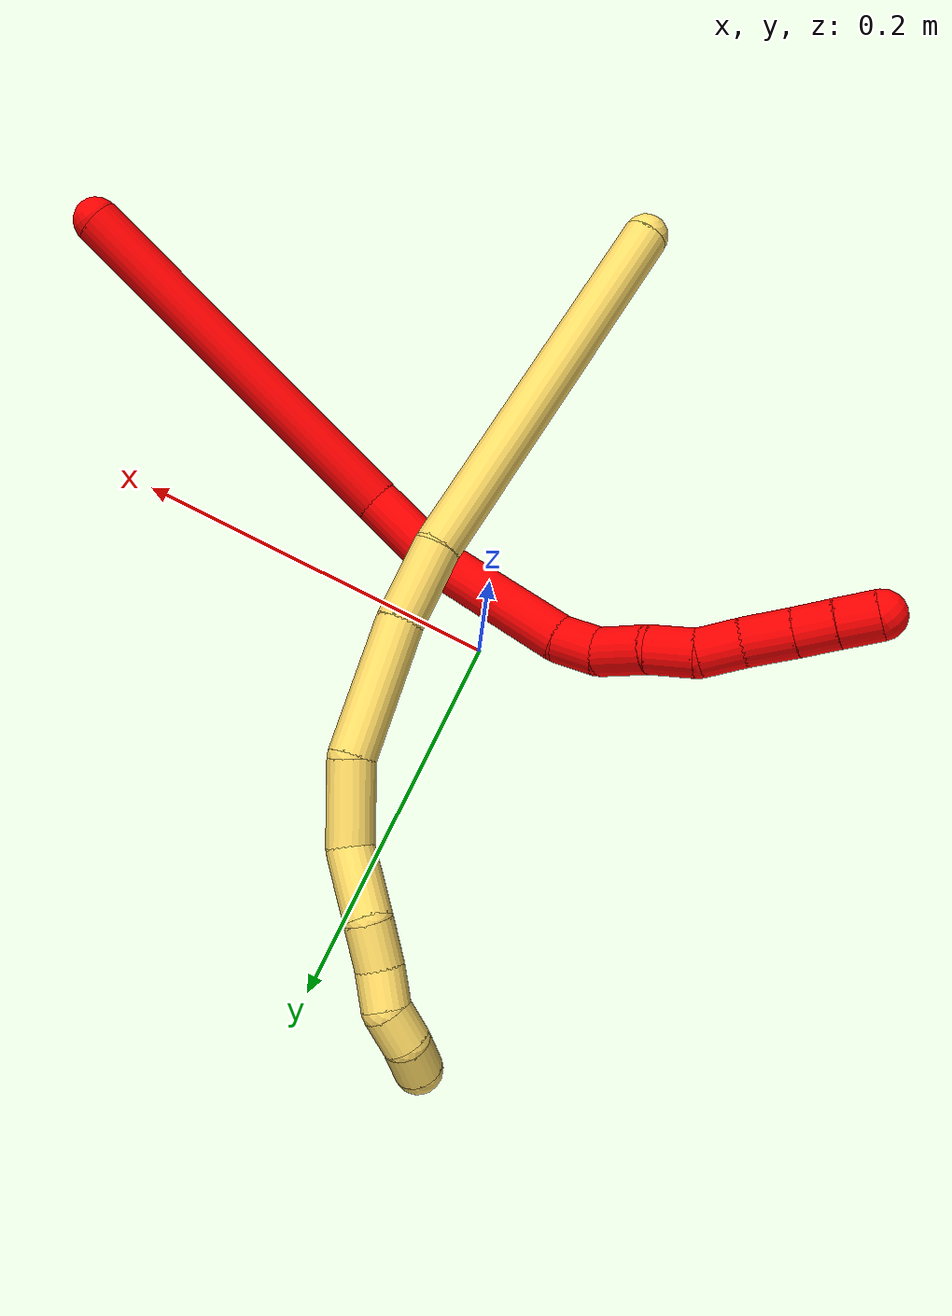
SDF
<sdf version="1.7">
 <world name="default">
  <model name="photoneo_s_sensor">
   <static>1</static>
   <pose>0 0 2 1.57079 1.57079 3.14159</pose>
   <link name="link">
    <inertial><mass>0.1</mass></inertial>
    <sensor name="sensor" type="depth">
     <update_rate>30</update_rate>
     <camera>
      <horizontal_fov>1.22</horizontal_fov>
      <image><width>1920</width><height>1200</height><format>B8G8R8</format></image>
      <clip><near>0.1</near><far>4</far></clip>
      <depth_camera><output>points</output></depth_camera>
     </camera>
     <plugin name="camera_plugin" filename="libgazebo_ros_depth_camera.so">
      <baseline>0.2</baseline>
      <alwaysOn>1</alwaysOn>
      <updateRate>0.0</updateRate>
      <cameraName>camera_ir</cameraName>
      <imageTopicName>/camera/color/image_raw</imageTopicName>
      <cameraInfoTopicName>/camera/color/camera_info</cameraInfoTopicName>
      <depthImageTopicName>/camera/depth/image_raw</depthImageTopicName>
      <depthImageCameraInfoTopicName>/camera/depth/camera_info</depthImageCameraInfoTopicName>
      <pointCloudTopicName>/camera/depth/points</pointCloudTopicName>
      <frameName>fr_optical</frameName>
      <pointCloudCutoff>0.1</pointCloudCutoff>
      <pointCloudCutoffMax>2.0</pointCloudCutoffMax>
      <distortionK1>0</distortionK1>
      <distortionK2>0</distortionK2>
      <distortionK3>0</distortionK3>
      <distortionT1>0</distortionT1>
      <distortionT2>0</distortionT2>
      <CxPrime>0</CxPrime>
      <Cx>0</Cx>
      <Cy>0</Cy>
      <focalLength>0</focalLength>
      <hackBaseline>0</hackBaseline>
     </plugin>
    </sensor>
   </link>
  </model>
  <model name="bin">
   <static>1</static>
   <link name="bottom">
    <collision name="collision-bottom">
     <pose>0 0 -0.01 0 -0 0</pose>
     <geometry><box><size>0.8 0.6 0.02</size></box></geometry>
     <surface>
      <friction><ode><mu>100</mu><mu2>100</mu2></ode></friction>
      <contact><collide_bitmask>65535</collide_bitmask></contact>
     </surface>
    </collision>
   </link>
   <link name="west_wall">
    <collision name="collision-west_wall">
     <pose>-0.41 0 0.1 0 -0 0</pose>
     <geometry><box><size>0.02 0.6 0.2</size></box></geometry>
     <surface>
      <friction><ode><mu>100</mu><mu2>100</mu2></ode></friction>
      <contact><collide_bitmask>65535</collide_bitmask></contact>
     </surface>
    </collision>
   </link>
   <link name="east_wall">
    <collision name="collision-east_wall">
     <pose>0.41 0 0.1 0 -0 0</pose>
     <geometry><box><size>0.02 0.6 0.2</size></box></geometry>
     <surface>
      <friction><ode><mu>100</mu><mu2>100</mu2></ode></friction>
      <contact><collide_bitmask>65535</collide_bitmask></contact>
     </surface>
    </collision>
   </link>
   <link name="south_wall">
    <collision name="collision-south_wall">
     <pose>0 -0.31 0.1 0 -0 0</pose>
     <geometry><box><size>0.8 0.02 0.2</size></box></geometry>
     <surface>
      <friction><ode><mu>100</mu><mu2>100</mu2></ode></friction>
      <contact><collide_bitmask>65535</collide_bitmask></contact>
     </surface>
    </collision>
   </link>
   <link name="north_wall">
    <collision name="collision-north_wall">
     <pose>0 0.31 0.1 0 -0 0</pose>
     <geometry><box><size>0.8 0.02 0.2</size></box></geometry>
     <surface>
      <friction><ode><mu>100</mu><mu2>100</mu2></ode></friction>
      <contact><collide_bitmask>65535</collide_bitmask></contact>
     </surface>
    </collision>
   </link>
  </model>
  <model name="2">
   <static>0</static>
   <link name="2">
    <collision name="collision-cylinder-e_1_1_4">
     <pose>-0.019762 0.007416 -0.10188 -3.06893 -0.191101 2.41665</pose>
     <geometry><cylinder><radius>0.0125</radius><length>0.208087</length></cylinder></geometry>
     <surface>
      <friction><ode><mu>1.16</mu><mu2>1.16</mu2><slip1>0</slip1><slip2>0</slip2></ode></friction>
      <contact><ode><kp>1e+06</kp><kd>1</kd><max_vel>0</max_vel><min_depth>0.001</min_depth></ode></contact>
     </surface>
    </collision>
    <visual name="visual-cylinder-e_1_1_4">
     <pose>-0.019762 0.007416 -0.10188 -3.06893 -0.191101 2.41665</pose>
     <geometry><cylinder><radius>0.0125</radius><length>0.208087</length></cylinder></geometry>
     <material><ambient>1 0 0 1</ambient></material>
    </visual>
    <collision name="collision-cylinder-e_2_4_5">
     <pose>-0.046739 0.02101 -0.224836 -2.85642 -0.31741 1.67933</pose>
     <geometry><cylinder><radius>0.0125</radius><length>0.046238</length></cylinder></geometry>
     <surface>
      <friction><ode><mu>1.16</mu><mu2>1.16</mu2><slip1>0</slip1><slip2>0</slip2></ode></friction>
      <contact><ode><kp>1e+06</kp><kd>1</kd><max_vel>0</max_vel><min_depth>0.001</min_depth></ode></contact>
     </surface>
    </collision>
    <visual name="visual-cylinder-e_2_4_5">
     <pose>-0.046739 0.02101 -0.224836 -2.85642 -0.31741 1.67933</pose>
     <geometry><cylinder><radius>0.0125</radius><length>0.046238</length></cylinder></geometry>
     <material><ambient>1 0 0 1</ambient></material>
    </visual>
    <collision name="collision-cylinder-e_3_5_6">
     <pose>-0.07687 0.040374 -0.276917 -2.73949 -0.597277 1.97202</pose>
     <geometry><cylinder><radius>0.0125</radius><length>0.08149</length></cylinder></geometry>
     <surface>
      <friction><ode><mu>1.16</mu><mu2>1.16</mu2><slip1>0</slip1><slip2>0</slip2></ode></friction>
      <contact><ode><kp>1e+06</kp><kd>1</kd><max_vel>0</max_vel><min_depth>0.001</min_depth></ode></contact>
     </surface>
    </collision>
    <visual name="visual-cylinder-e_3_5_6">
     <pose>-0.07687 0.040374 -0.276917 -2.73949 -0.597277 1.97202</pose>
     <geometry><cylinder><radius>0.0125</radius><length>0.08149</length></cylinder></geometry>
     <material><ambient>1 0 0 1</ambient></material>
    </visual>
    <collision name="collision-cylinder-e_4_6_7">
     <pose>-0.108039 0.055957 -0.315151 -2.82132 -0.82549 2.43486</pose>
     <geometry><cylinder><radius>0.0125</radius><length>0.022463</length></cylinder></geometry>
     <surface>
      <friction><ode><mu>1.16</mu><mu2>1.16</mu2><slip1>0</slip1><slip2>0</slip2></ode></friction>
      <contact><ode><kp>1e+06</kp><kd>1</kd><max_vel>0</max_vel><min_depth>0.001</min_depth></ode></contact>
     </surface>
    </collision>
    <visual name="visual-cylinder-e_4_6_7">
     <pose>-0.108039 0.055957 -0.315151 -2.82132 -0.82549 2.43486</pose>
     <geometry><cylinder><radius>0.0125</radius><length>0.022463</length></cylinder></geometry>
     <material><ambient>1 0 0 1</ambient></material>
    </visual>
    <collision name="collision-cylinder-e_5_7_8">
     <pose>-0.129131 0.060956 -0.326769 -2.60659 -1.19264 2.37406</pose>
     <geometry><cylinder><radius>0.0125</radius><length>0.027629</length></cylinder></geometry>
     <surface>
      <friction><ode><mu>1.16</mu><mu2>1.16</mu2><slip1>0</slip1><slip2>0</slip2></ode></friction>
      <contact><ode><kp>1e+06</kp><kd>1</kd><max_vel>0</max_vel><min_depth>0.001</min_depth></ode></contact>
     </surface>
    </collision>
    <visual name="visual-cylinder-e_5_7_8">
     <pose>-0.129131 0.060956 -0.326769 -2.60659 -1.19264 2.37406</pose>
     <geometry><cylinder><radius>0.0125</radius><length>0.027629</length></cylinder></geometry>
     <material><ambient>1 0 0 1</ambient></material>
    </visual>
    <collision name="collision-cylinder-e_6_8_9">
     <pose>-0.152611 0.064238 -0.337738 -3.03842 -1.01448 2.95631</pose>
     <geometry><cylinder><radius>0.0125</radius><length>0.025061</length></cylinder></geometry>
     <surface>
      <friction><ode><mu>1.16</mu><mu2>1.16</mu2><slip1>0</slip1><slip2>0</slip2></ode></friction>
      <contact><ode><kp>1e+06</kp><kd>1</kd><max_vel>0</max_vel><min_depth>0.001</min_depth></ode></contact>
     </surface>
    </collision>
    <visual name="visual-cylinder-e_6_8_9">
     <pose>-0.152611 0.064238 -0.337738 -3.03842 -1.01448 2.95631</pose>
     <geometry><cylinder><radius>0.0125</radius><length>0.025061</length></cylinder></geometry>
     <material><ambient>1 0 0 1</ambient></material>
    </visual>
    <collision name="collision-cylinder-e_7_9_10">
     <pose>-0.173646 0.062414 -0.348091 2.55527 -1.16002 -2.27811</pose>
     <geometry><cylinder><radius>0.0125</radius><length>0.022676</length></cylinder></geometry>
     <surface>
      <friction><ode><mu>1.16</mu><mu2>1.16</mu2><slip1>0</slip1><slip2>0</slip2></ode></friction>
      <contact><ode><kp>1e+06</kp><kd>1</kd><max_vel>0</max_vel><min_depth>0.001</min_depth></ode></contact>
     </surface>
    </collision>
    <visual name="visual-cylinder-e_7_9_10">
     <pose>-0.173646 0.062414 -0.348091 2.55527 -1.16002 -2.27811</pose>
     <geometry><cylinder><radius>0.0125</radius><length>0.022676</length></cylinder></geometry>
     <material><ambient>1 0 0 1</ambient></material>
    </visual>
    <collision name="collision-cylinder-e_8_10_11">
     <pose>-0.196058 0.058615 -0.356077 2.84368 -1.21922 -2.71825</pose>
     <geometry><cylinder><radius>0.0125</radius><length>0.025599</length></cylinder></geometry>
     <surface>
      <friction><ode><mu>1.16</mu><mu2>1.16</mu2><slip1>0</slip1><slip2>0</slip2></ode></friction>
      <contact><ode><kp>1e+06</kp><kd>1</kd><max_vel>0</max_vel><min_depth>0.001</min_depth></ode></contact>
     </surface>
    </collision>
    <visual name="visual-cylinder-e_8_10_11">
     <pose>-0.196058 0.058615 -0.356077 2.84368 -1.21922 -2.71825</pose>
     <geometry><cylinder><radius>0.0125</radius><length>0.025599</length></cylinder></geometry>
     <material><ambient>1 0 0 1</ambient></material>
    </visual>
    <collision name="collision-cylinder-e_9_11_12">
     <pose>-0.217572 0.056258 -0.363409 2.81313 -1.23685 -2.68393</pose>
     <geometry><cylinder><radius>0.0125</radius><length>0.020106</length></cylinder></geometry>
     <surface>
      <friction><ode><mu>1.16</mu><mu2>1.16</mu2><slip1>0</slip1><slip2>0</slip2></ode></friction>
      <contact><ode><kp>1e+06</kp><kd>1</kd><max_vel>0</max_vel><min_depth>0.001</min_depth></ode></contact>
     </surface>
    </collision>
    <visual name="visual-cylinder-e_9_11_12">
     <pose>-0.217572 0.056258 -0.363409 2.81313 -1.23685 -2.68393</pose>
     <geometry><cylinder><radius>0.0125</radius><length>0.020106</length></cylinder></geometry>
     <material><ambient>1 0 0 1</ambient></material>
    </visual>
    <collision name="collision-cylinder-e_10_12_2">
     <pose>-0.236743 0.053934 -0.369911 2.78454 -1.21363 -2.63297</pose>
     <geometry><cylinder><radius>0.0125</radius><length>0.02065</length></cylinder></geometry>
     <surface>
      <friction><ode><mu>1.16</mu><mu2>1.16</mu2><slip1>0</slip1><slip2>0</slip2></ode></friction>
      <contact><ode><kp>1e+06</kp><kd>1</kd><max_vel>0</max_vel><min_depth>0.001</min_depth></ode></contact>
     </surface>
    </collision>
    <visual name="visual-cylinder-e_10_12_2">
     <pose>-0.236743 0.053934 -0.369911 2.78454 -1.21363 -2.63297</pose>
     <geometry><cylinder><radius>0.0125</radius><length>0.02065</length></cylinder></geometry>
     <material><ambient>1 0 0 1</ambient></material>
    </visual>
    <collision name="collision-sphere-2">
     <pose>-0.246417 0.052672 -0.373293 0 -0 0</pose>
     <geometry><sphere><radius>0.0125</radius></sphere></geometry>
     <surface>
      <friction><ode><mu>1.16</mu><mu2>1.16</mu2><slip1>0</slip1><slip2>0</slip2></ode></friction>
      <contact><ode><kp>1e+06</kp><kd>1</kd><max_vel>0</max_vel><min_depth>0.001</min_depth></ode></contact>
     </surface>
    </collision>
    <visual name="visual-sphere-2">
     <pose>-0.246417 0.052672 -0.373293 0 -0 0</pose>
     <geometry><sphere><radius>0.0125</radius></sphere></geometry>
     <material><ambient>1 0 0 1</ambient></material>
    </visual>
    <collision name="collision-sphere-12">
     <pose>-0.22707 0.055195 -0.366528 0 -0 0</pose>
     <geometry><sphere><radius>0.0125</radius></sphere></geometry>
     <surface>
      <friction><ode><mu>1.16</mu><mu2>1.16</mu2><slip1>0</slip1><slip2>0</slip2></ode></friction>
      <contact><ode><kp>1e+06</kp><kd>1</kd><max_vel>0</max_vel><min_depth>0.001</min_depth></ode></contact>
     </surface>
    </collision>
    <visual name="visual-sphere-12">
     <pose>-0.22707 0.055195 -0.366528 0 -0 0</pose>
     <geometry><sphere><radius>0.0125</radius></sphere></geometry>
     <material><ambient>1 0 0 1</ambient></material>
    </visual>
    <collision name="collision-sphere-11">
     <pose>-0.208074 0.057321 -0.36029 0 -0 0</pose>
     <geometry><sphere><radius>0.0125</radius></sphere></geometry>
     <surface>
      <friction><ode><mu>1.16</mu><mu2>1.16</mu2><slip1>0</slip1><slip2>0</slip2></ode></friction>
      <contact><ode><kp>1e+06</kp><kd>1</kd><max_vel>0</max_vel><min_depth>0.001</min_depth></ode></contact>
     </surface>
    </collision>
    <visual name="visual-sphere-11">
     <pose>-0.208074 0.057321 -0.36029 0 -0 0</pose>
     <geometry><sphere><radius>0.0125</radius></sphere></geometry>
     <material><ambient>1 0 0 1</ambient></material>
    </visual>
    <collision name="collision-sphere-10">
     <pose>-0.184041 0.059909 -0.351863 0 -0 0</pose>
     <geometry><sphere><radius>0.0125</radius></sphere></geometry>
     <surface>
      <friction><ode><mu>1.16</mu><mu2>1.16</mu2><slip1>0</slip1><slip2>0</slip2></ode></friction>
      <contact><ode><kp>1e+06</kp><kd>1</kd><max_vel>0</max_vel><min_depth>0.001</min_depth></ode></contact>
     </surface>
    </collision>
    <visual name="visual-sphere-10">
     <pose>-0.184041 0.059909 -0.351863 0 -0 0</pose>
     <geometry><sphere><radius>0.0125</radius></sphere></geometry>
     <material><ambient>1 0 0 1</ambient></material>
    </visual>
    <collision name="collision-sphere-9">
     <pose>-0.163252 0.064919 -0.34432 0 -0 0</pose>
     <geometry><sphere><radius>0.0125</radius></sphere></geometry>
     <surface>
      <friction><ode><mu>1.16</mu><mu2>1.16</mu2><slip1>0</slip1><slip2>0</slip2></ode></friction>
      <contact><ode><kp>1e+06</kp><kd>1</kd><max_vel>0</max_vel><min_depth>0.001</min_depth></ode></contact>
     </surface>
    </collision>
    <visual name="visual-sphere-9">
     <pose>-0.163252 0.064919 -0.34432 0 -0 0</pose>
     <geometry><sphere><radius>0.0125</radius></sphere></geometry>
     <material><ambient>1 0 0 1</ambient></material>
    </visual>
    <collision name="collision-sphere-4">
     <pose>-0.039524 0.014831 -0.203759 0 -0 0</pose>
     <geometry><sphere><radius>0.0125</radius></sphere></geometry>
     <surface>
      <friction><ode><mu>1.16</mu><mu2>1.16</mu2><slip1>0</slip1><slip2>0</slip2></ode></friction>
      <contact><ode><kp>1e+06</kp><kd>1</kd><max_vel>0</max_vel><min_depth>0.001</min_depth></ode></contact>
     </surface>
    </collision>
    <visual name="visual-sphere-4">
     <pose>-0.039524 0.014831 -0.203759 0 -0 0</pose>
     <geometry><sphere><radius>0.0125</radius></sphere></geometry>
     <material><ambient>1 0 0 1</ambient></material>
    </visual>
    <collision name="collision-sphere-1">
     <geometry><sphere><radius>0.0125</radius></sphere></geometry>
     <surface>
      <friction><ode><mu>1.16</mu><mu2>1.16</mu2><slip1>0</slip1><slip2>0</slip2></ode></friction>
      <contact><ode><kp>1e+06</kp><kd>1</kd><max_vel>0</max_vel><min_depth>0.001</min_depth></ode></contact>
     </surface>
    </collision>
    <visual name="visual-sphere-1">
     <geometry><sphere><radius>0.0125</radius></sphere></geometry>
     <material><ambient>1 0 0 1</ambient></material>
    </visual>
    <collision name="collision-sphere-8">
     <pose>-0.14197 0.063556 -0.331157 0 -0 0</pose>
     <geometry><sphere><radius>0.0125</radius></sphere></geometry>
     <surface>
      <friction><ode><mu>1.16</mu><mu2>1.16</mu2><slip1>0</slip1><slip2>0</slip2></ode></friction>
      <contact><ode><kp>1e+06</kp><kd>1</kd><max_vel>0</max_vel><min_depth>0.001</min_depth></ode></contact>
     </surface>
    </collision>
    <visual name="visual-sphere-8">
     <pose>-0.14197 0.063556 -0.331157 0 -0 0</pose>
     <geometry><sphere><radius>0.0125</radius></sphere></geometry>
     <material><ambient>1 0 0 1</ambient></material>
    </visual>
    <collision name="collision-sphere-5">
     <pose>-0.053955 0.027189 -0.245913 0 -0 0</pose>
     <geometry><sphere><radius>0.0125</radius></sphere></geometry>
     <surface>
      <friction><ode><mu>1.16</mu><mu2>1.16</mu2><slip1>0</slip1><slip2>0</slip2></ode></friction>
      <contact><ode><kp>1e+06</kp><kd>1</kd><max_vel>0</max_vel><min_depth>0.001</min_depth></ode></contact>
     </surface>
    </collision>
    <visual name="visual-sphere-5">
     <pose>-0.053955 0.027189 -0.245913 0 -0 0</pose>
     <geometry><sphere><radius>0.0125</radius></sphere></geometry>
     <material><ambient>1 0 0 1</ambient></material>
    </visual>
    <collision name="collision-sphere-6">
     <pose>-0.099785 0.053559 -0.307921 0 -0 0</pose>
     <geometry><sphere><radius>0.0125</radius></sphere></geometry>
     <surface>
      <friction><ode><mu>1.16</mu><mu2>1.16</mu2><slip1>0</slip1><slip2>0</slip2></ode></friction>
      <contact><ode><kp>1e+06</kp><kd>1</kd><max_vel>0</max_vel><min_depth>0.001</min_depth></ode></contact>
     </surface>
    </collision>
    <visual name="visual-sphere-6">
     <pose>-0.099785 0.053559 -0.307921 0 -0 0</pose>
     <geometry><sphere><radius>0.0125</radius></sphere></geometry>
     <material><ambient>1 0 0 1</ambient></material>
    </visual>
    <collision name="collision-sphere-7">
     <pose>-0.116293 0.058355 -0.322381 0 -0 0</pose>
     <geometry><sphere><radius>0.0125</radius></sphere></geometry>
     <surface>
      <friction><ode><mu>1.16</mu><mu2>1.16</mu2><slip1>0</slip1><slip2>0</slip2></ode></friction>
      <contact><ode><kp>1e+06</kp><kd>1</kd><max_vel>0</max_vel><min_depth>0.001</min_depth></ode></contact>
     </surface>
    </collision>
    <visual name="visual-sphere-7">
     <pose>-0.116293 0.058355 -0.322381 0 -0 0</pose>
     <geometry><sphere><radius>0.0125</radius></sphere></geometry>
     <material><ambient>1 0 0 1</ambient></material>
    </visual>
    <inertial>
     <pose>-0.081153 0.031033 -0.221376 0 -0 0</pose>
     <mass>0.5</mass>
     <inertia>
      <ixx>-5.8e-05</ixx>
      <ixy>0</ixy>
      <ixz>0</ixz>
      <iyy>0.001161</iyy>
      <iyz>0</iyz>
      <izz>8.6e-05</izz>
     </inertia>
    </inertial>
   </link>
   <pose>0.280195 -0.107383 0.049563 1.12414 0.629229 0.886995</pose>
  </model>
  <model name="5">
   <static>0</static>
   <link name="5">
    <collision name="collision-cylinder-e_1_1_4">
     <pose>-0.046649 0.079776 0.055765 -0.960728 -0.44693 0.235741</pose>
     <geometry><cylinder><radius>0.0125</radius><length>0.21587</length></cylinder></geometry>
     <surface>
      <friction><ode><mu>1.16</mu><mu2>1.16</mu2><slip1>0</slip1><slip2>0</slip2></ode></friction>
      <contact><ode><kp>1e+06</kp><kd>1</kd><max_vel>0</max_vel><min_depth>0.001</min_depth></ode></contact>
     </surface>
    </collision>
    <visual name="visual-cylinder-e_1_1_4">
     <pose>-0.046649 0.079776 0.055765 -0.960728 -0.44693 0.235741</pose>
     <geometry><cylinder><radius>0.0125</radius><length>0.21587</length></cylinder></geometry>
     <material><ambient>1 0.858824 0.4 1</ambient></material>
    </visual>
    <collision name="collision-cylinder-e_2_4_5">
     <pose>-0.100085 0.17558 0.124851 -0.877402 -0.31477 0.148646</pose>
     <geometry><cylinder><radius>0.0125</radius><length>0.043838</length></cylinder></geometry>
     <surface>
      <friction><ode><mu>1.16</mu><mu2>1.16</mu2><slip1>0</slip1><slip2>0</slip2></ode></friction>
      <contact><ode><kp>1e+06</kp><kd>1</kd><max_vel>0</max_vel><min_depth>0.001</min_depth></ode></contact>
     </surface>
    </collision>
    <visual name="visual-cylinder-e_2_4_5">
     <pose>-0.100085 0.17558 0.124851 -0.877402 -0.31477 0.148646</pose>
     <geometry><cylinder><radius>0.0125</radius><length>0.043838</length></cylinder></geometry>
     <material><ambient>1 0.858824 0.4 1</ambient></material>
    </visual>
    <collision name="collision-cylinder-e_3_5_6">
     <pose>-0.114398 0.221197 0.158874 -0.960276 -0.205498 0.107296</pose>
     <geometry><cylinder><radius>0.0125</radius><length>0.073773</length></cylinder></geometry>
     <surface>
      <friction><ode><mu>1.16</mu><mu2>1.16</mu2><slip1>0</slip1><slip2>0</slip2></ode></friction>
      <contact><ode><kp>1e+06</kp><kd>1</kd><max_vel>0</max_vel><min_depth>0.001</min_depth></ode></contact>
     </surface>
    </collision>
    <visual name="visual-cylinder-e_3_5_6">
     <pose>-0.114398 0.221197 0.158874 -0.960276 -0.205498 0.107296</pose>
     <geometry><cylinder><radius>0.0125</radius><length>0.073773</length></cylinder></geometry>
     <material><ambient>1 0.858824 0.4 1</ambient></material>
    </visual>
    <collision name="collision-cylinder-e_4_6_7">
     <pose>-0.118637 0.266854 0.194836 -0.811259 0.147315 -0.063357</pose>
     <geometry><cylinder><radius>0.0125</radius><length>0.044807</length></cylinder></geometry>
     <surface>
      <friction><ode><mu>1.16</mu><mu2>1.16</mu2><slip1>0</slip1><slip2>0</slip2></ode></friction>
      <contact><ode><kp>1e+06</kp><kd>1</kd><max_vel>0</max_vel><min_depth>0.001</min_depth></ode></contact>
     </surface>
    </collision>
    <visual name="visual-cylinder-e_4_6_7">
     <pose>-0.118637 0.266854 0.194836 -0.811259 0.147315 -0.063357</pose>
     <geometry><cylinder><radius>0.0125</radius><length>0.044807</length></cylinder></geometry>
     <material><ambient>1 0.858824 0.4 1</ambient></material>
    </visual>
    <collision name="collision-cylinder-e_5_7_8">
     <pose>-0.109165 0.299318 0.216466 -1.20018 0.338069 -0.232506</pose>
     <geometry><cylinder><radius>0.0125</radius><length>0.037287</length></cylinder></geometry>
     <surface>
      <friction><ode><mu>1.16</mu><mu2>1.16</mu2><slip1>0</slip1><slip2>0</slip2></ode></friction>
      <contact><ode><kp>1e+06</kp><kd>1</kd><max_vel>0</max_vel><min_depth>0.001</min_depth></ode></contact>
     </surface>
    </collision>
    <visual name="visual-cylinder-e_5_7_8">
     <pose>-0.109165 0.299318 0.216466 -1.20018 0.338069 -0.232506</pose>
     <geometry><cylinder><radius>0.0125</radius><length>0.037287</length></cylinder></geometry>
     <material><ambient>1 0.858824 0.4 1</ambient></material>
    </visual>
    <collision name="collision-cylinder-e_6_8_9">
     <pose>-0.098342 0.323768 0.230453 -0.813332 0.396329 -0.172529</pose>
     <geometry><cylinder><radius>0.0125</radius><length>0.024036</length></cylinder></geometry>
     <surface>
      <friction><ode><mu>1.16</mu><mu2>1.16</mu2><slip1>0</slip1><slip2>0</slip2></ode></friction>
      <contact><ode><kp>1e+06</kp><kd>1</kd><max_vel>0</max_vel><min_depth>0.001</min_depth></ode></contact>
     </surface>
    </collision>
    <visual name="visual-cylinder-e_6_8_9">
     <pose>-0.098342 0.323768 0.230453 -0.813332 0.396329 -0.172529</pose>
     <geometry><cylinder><radius>0.0125</radius><length>0.024036</length></cylinder></geometry>
     <material><ambient>1 0.858824 0.4 1</ambient></material>
    </visual>
    <collision name="collision-cylinder-e_7_9_10">
     <pose>-0.090727 0.339868 0.243539 -0.973867 0.296792 -0.157973</pose>
     <geometry><cylinder><radius>0.0125</radius><length>0.020344</length></cylinder></geometry>
     <surface>
      <friction><ode><mu>1.16</mu><mu2>1.16</mu2><slip1>0</slip1><slip2>0</slip2></ode></friction>
      <contact><ode><kp>1e+06</kp><kd>1</kd><max_vel>0</max_vel><min_depth>0.001</min_depth></ode></contact>
     </surface>
    </collision>
    <visual name="visual-cylinder-e_7_9_10">
     <pose>-0.090727 0.339868 0.243539 -0.973867 0.296792 -0.157973</pose>
     <geometry><cylinder><radius>0.0125</radius><length>0.020344</length></cylinder></geometry>
     <material><ambient>1 0.858824 0.4 1</ambient></material>
    </visual>
    <collision name="collision-cylinder-e_8_10_11">
     <pose>-0.081325 0.352451 0.255207 -0.631723 0.696643 -0.236237</pose>
     <geometry><cylinder><radius>0.0125</radius><length>0.020034</length></cylinder></geometry>
     <surface>
      <friction><ode><mu>1.16</mu><mu2>1.16</mu2><slip1>0</slip1><slip2>0</slip2></ode></friction>
      <contact><ode><kp>1e+06</kp><kd>1</kd><max_vel>0</max_vel><min_depth>0.001</min_depth></ode></contact>
     </surface>
    </collision>
    <visual name="visual-cylinder-e_8_10_11">
     <pose>-0.081325 0.352451 0.255207 -0.631723 0.696643 -0.236237</pose>
     <geometry><cylinder><radius>0.0125</radius><length>0.020034</length></cylinder></geometry>
     <material><ambient>1 0.858824 0.4 1</ambient></material>
    </visual>
    <collision name="collision-cylinder-e_9_11_2">
     <pose>-0.069773 0.358882 0.269788 -0.222322 0.537798 -0.0615</pose>
     <geometry><cylinder><radius>0.0125</radius><length>0.020009</length></cylinder></geometry>
     <surface>
      <friction><ode><mu>1.16</mu><mu2>1.16</mu2><slip1>0</slip1><slip2>0</slip2></ode></friction>
      <contact><ode><kp>1e+06</kp><kd>1</kd><max_vel>0</max_vel><min_depth>0.001</min_depth></ode></contact>
     </surface>
    </collision>
    <visual name="visual-cylinder-e_9_11_2">
     <pose>-0.069773 0.358882 0.269788 -0.222322 0.537798 -0.0615</pose>
     <geometry><cylinder><radius>0.0125</radius><length>0.020009</length></cylinder></geometry>
     <material><ambient>1 0.858824 0.4 1</ambient></material>
    </visual>
    <collision name="collision-sphere-2">
     <pose>-0.064648 0.360777 0.278169 0 -0 0</pose>
     <geometry><sphere><radius>0.0125</radius></sphere></geometry>
     <surface>
      <friction><ode><mu>1.16</mu><mu2>1.16</mu2><slip1>0</slip1><slip2>0</slip2></ode></friction>
      <contact><ode><kp>1e+06</kp><kd>1</kd><max_vel>0</max_vel><min_depth>0.001</min_depth></ode></contact>
     </surface>
    </collision>
    <visual name="visual-sphere-2">
     <pose>-0.064648 0.360777 0.278169 0 -0 0</pose>
     <geometry><sphere><radius>0.0125</radius></sphere></geometry>
     <material><ambient>1 0.858824 0.4 1</ambient></material>
    </visual>
    <collision name="collision-sphere-11">
     <pose>-0.074898 0.356988 0.261407 0 -0 0</pose>
     <geometry><sphere><radius>0.0125</radius></sphere></geometry>
     <surface>
      <friction><ode><mu>1.16</mu><mu2>1.16</mu2><slip1>0</slip1><slip2>0</slip2></ode></friction>
      <contact><ode><kp>1e+06</kp><kd>1</kd><max_vel>0</max_vel><min_depth>0.001</min_depth></ode></contact>
     </surface>
    </collision>
    <visual name="visual-sphere-11">
     <pose>-0.074898 0.356988 0.261407 0 -0 0</pose>
     <geometry><sphere><radius>0.0125</radius></sphere></geometry>
     <material><ambient>1 0.858824 0.4 1</ambient></material>
    </visual>
    <collision name="collision-sphere-10">
     <pose>-0.087752 0.347914 0.249007 0 -0 0</pose>
     <geometry><sphere><radius>0.0125</radius></sphere></geometry>
     <surface>
      <friction><ode><mu>1.16</mu><mu2>1.16</mu2><slip1>0</slip1><slip2>0</slip2></ode></friction>
      <contact><ode><kp>1e+06</kp><kd>1</kd><max_vel>0</max_vel><min_depth>0.001</min_depth></ode></contact>
     </surface>
    </collision>
    <visual name="visual-sphere-10">
     <pose>-0.087752 0.347914 0.249007 0 -0 0</pose>
     <geometry><sphere><radius>0.0125</radius></sphere></geometry>
     <material><ambient>1 0.858824 0.4 1</ambient></material>
    </visual>
    <collision name="collision-sphere-9">
     <pose>-0.093702 0.331823 0.238071 0 -0 0</pose>
     <geometry><sphere><radius>0.0125</radius></sphere></geometry>
     <surface>
      <friction><ode><mu>1.16</mu><mu2>1.16</mu2><slip1>0</slip1><slip2>0</slip2></ode></friction>
      <contact><ode><kp>1e+06</kp><kd>1</kd><max_vel>0</max_vel><min_depth>0.001</min_depth></ode></contact>
     </surface>
    </collision>
    <visual name="visual-sphere-9">
     <pose>-0.093702 0.331823 0.238071 0 -0 0</pose>
     <geometry><sphere><radius>0.0125</radius></sphere></geometry>
     <material><ambient>1 0.858824 0.4 1</ambient></material>
    </visual>
    <collision name="collision-sphere-4">
     <pose>-0.093299 0.159551 0.11153 0 -0 0</pose>
     <geometry><sphere><radius>0.0125</radius></sphere></geometry>
     <surface>
      <friction><ode><mu>1.16</mu><mu2>1.16</mu2><slip1>0</slip1><slip2>0</slip2></ode></friction>
      <contact><ode><kp>1e+06</kp><kd>1</kd><max_vel>0</max_vel><min_depth>0.001</min_depth></ode></contact>
     </surface>
    </collision>
    <visual name="visual-sphere-4">
     <pose>-0.093299 0.159551 0.11153 0 -0 0</pose>
     <geometry><sphere><radius>0.0125</radius></sphere></geometry>
     <material><ambient>1 0.858824 0.4 1</ambient></material>
    </visual>
    <collision name="collision-sphere-1">
     <geometry><sphere><radius>0.0125</radius></sphere></geometry>
     <surface>
      <friction><ode><mu>1.16</mu><mu2>1.16</mu2><slip1>0</slip1><slip2>0</slip2></ode></friction>
      <contact><ode><kp>1e+06</kp><kd>1</kd><max_vel>0</max_vel><min_depth>0.001</min_depth></ode></contact>
     </surface>
    </collision>
    <visual name="visual-sphere-1">
     <geometry><sphere><radius>0.0125</radius></sphere></geometry>
     <material><ambient>1 0.858824 0.4 1</ambient></material>
    </visual>
    <collision name="collision-sphere-8">
     <pose>-0.102981 0.315713 0.222836 0 -0 0</pose>
     <geometry><sphere><radius>0.0125</radius></sphere></geometry>
     <surface>
      <friction><ode><mu>1.16</mu><mu2>1.16</mu2><slip1>0</slip1><slip2>0</slip2></ode></friction>
      <contact><ode><kp>1e+06</kp><kd>1</kd><max_vel>0</max_vel><min_depth>0.001</min_depth></ode></contact>
     </surface>
    </collision>
    <visual name="visual-sphere-8">
     <pose>-0.102981 0.315713 0.222836 0 -0 0</pose>
     <geometry><sphere><radius>0.0125</radius></sphere></geometry>
     <material><ambient>1 0.858824 0.4 1</ambient></material>
    </visual>
    <collision name="collision-sphere-5">
     <pose>-0.106871 0.19161 0.138172 0 -0 0</pose>
     <geometry><sphere><radius>0.0125</radius></sphere></geometry>
     <surface>
      <friction><ode><mu>1.16</mu><mu2>1.16</mu2><slip1>0</slip1><slip2>0</slip2></ode></friction>
      <contact><ode><kp>1e+06</kp><kd>1</kd><max_vel>0</max_vel><min_depth>0.001</min_depth></ode></contact>
     </surface>
    </collision>
    <visual name="visual-sphere-5">
     <pose>-0.106871 0.19161 0.138172 0 -0 0</pose>
     <geometry><sphere><radius>0.0125</radius></sphere></geometry>
     <material><ambient>1 0.858824 0.4 1</ambient></material>
    </visual>
    <collision name="collision-sphere-6">
     <pose>-0.121925 0.250784 0.179576 0 -0 0</pose>
     <geometry><sphere><radius>0.0125</radius></sphere></geometry>
     <surface>
      <friction><ode><mu>1.16</mu><mu2>1.16</mu2><slip1>0</slip1><slip2>0</slip2></ode></friction>
      <contact><ode><kp>1e+06</kp><kd>1</kd><max_vel>0</max_vel><min_depth>0.001</min_depth></ode></contact>
     </surface>
    </collision>
    <visual name="visual-sphere-6">
     <pose>-0.121925 0.250784 0.179576 0 -0 0</pose>
     <geometry><sphere><radius>0.0125</radius></sphere></geometry>
     <material><ambient>1 0.858824 0.4 1</ambient></material>
    </visual>
    <collision name="collision-sphere-7">
     <pose>-0.115348 0.282924 0.210095 0 -0 0</pose>
     <geometry><sphere><radius>0.0125</radius></sphere></geometry>
     <surface>
      <friction><ode><mu>1.16</mu><mu2>1.16</mu2><slip1>0</slip1><slip2>0</slip2></ode></friction>
      <contact><ode><kp>1e+06</kp><kd>1</kd><max_vel>0</max_vel><min_depth>0.001</min_depth></ode></contact>
     </surface>
    </collision>
    <visual name="visual-sphere-7">
     <pose>-0.115348 0.282924 0.210095 0 -0 0</pose>
     <geometry><sphere><radius>0.0125</radius></sphere></geometry>
     <material><ambient>1 0.858824 0.4 1</ambient></material>
    </visual>
    <inertial>
     <pose>-0.079037 0.186586 0.134076 0 -0 0</pose>
     <mass>0.5</mass>
     <inertia>
      <ixx>0.000982</ixx>
      <ixy>0</ixy>
      <ixz>0</ixz>
      <iyy>0.000792</iyy>
      <iyz>0</iyz>
      <izz>-0.000285</izz>
     </inertia>
    </inertial>
   </link>
   <pose>0.021127 -0.245677 0.012196 2.48555 0.219557 -2.80941</pose>
  </model>
 </world>
</sdf>
